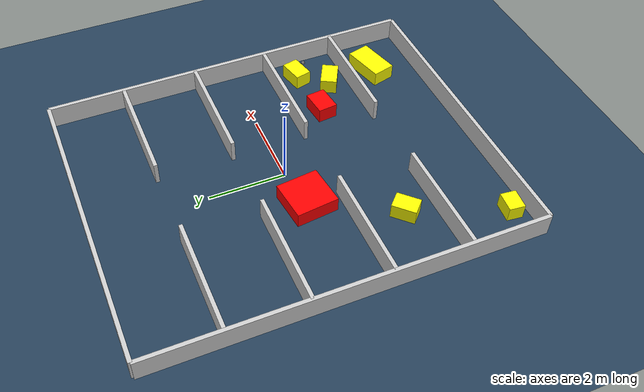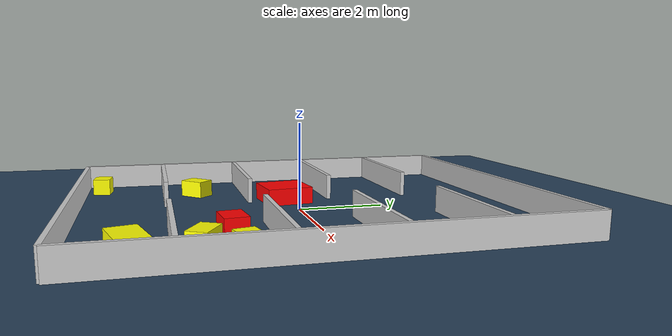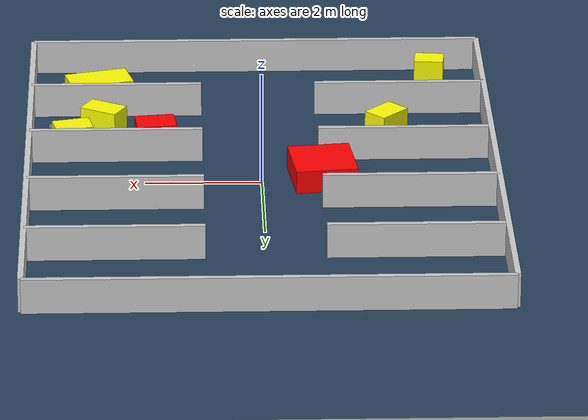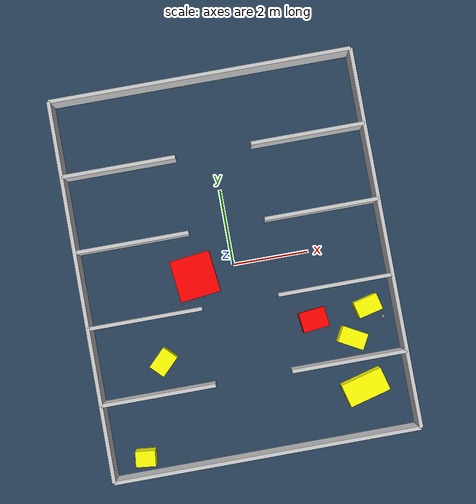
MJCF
<?xml version="1.0" ?>
<mujoco model="generated_environment">
  <option timestep="0.01" integrator="RK4" cone="elliptic"/>
  <default>
    <geom density="1"/>
  </default>
  <asset>
    <texture builtin="gradient" height="3072" rgb1="0.3 0.5 0.7" rgb2="0 0 0" type="skybox" width="512"/>
    <texture builtin="checker" height="300" mark="edge" markrgb="0.8 0.8 0.8" name="groundplane" rgb1="0.2 0.3 0.4" rgb2="0.1 0.2 0.3" type="2d" width="300"/>
    <material name="groundplane" reflectance="0.2" texrepeat="5 5" texture="groundplane" texuniform="true"/>
    <material name="robot" rgba="0.0 1.0 0.0 1"/>
  </asset>
  <worldbody>
    <light dir="0 0 -1" directional="true" pos="0 0 1.5"/>
    <geom condim="4" friction="1.0 0.005 0.001" material="groundplane" name="floor" size="0 0 0.05" type="plane"/>
    <body name="walls">
      <geom name="wall_1" condim="4" pos="-4.0 0.0 0.3" rgba="0.800000011920929 0.800000011920929 0.800000011920929 1.0" size="0.05 5.0 0.3" type="box"/>
      <geom name="wall_2" condim="4" pos="4.0 0.0 0.3" rgba="0.800000011920929 0.800000011920929 0.800000011920929 1.0" size="0.05 5.0 0.3" type="box"/>
      <geom name="wall_3" condim="4" pos="0.0 -5.0 0.3" rgba="0.800000011920929 0.800000011920929 0.800000011920929 1.0" size="4.0 0.05 0.3" type="box"/>
      <geom name="wall_4" condim="4" pos="0.0 5.0 0.3" rgba="0.800000011920929 0.800000011920929 0.800000011920929 1.0" size="4.0 0.05 0.3" type="box"/>
      <geom name="wall_5" condim="4" pos="-2.5 -3.0 0.3" rgba="0.800000011920929 0.800000011920929 0.800000011920929 1.0" size="1.5 0.05 0.3" type="box"/>
      <geom name="wall_6" condim="4" pos="2.5 -3.0 0.3" rgba="0.800000011920929 0.800000011920929 0.800000011920929 1.0" size="1.5 0.05 0.3" type="box"/>
      <geom name="wall_7" condim="4" pos="-2.5 -1.0 0.3" rgba="0.800000011920929 0.800000011920929 0.800000011920929 1.0" size="1.5 0.05 0.3" type="box"/>
      <geom name="wall_8" condim="4" pos="2.5 -1.0 0.3" rgba="0.800000011920929 0.800000011920929 0.800000011920929 1.0" size="1.5 0.05 0.3" type="box"/>
      <geom name="wall_9" condim="4" pos="-2.5 1.0 0.3" rgba="0.800000011920929 0.800000011920929 0.800000011920929 1.0" size="1.5 0.05 0.3" type="box"/>
      <geom name="wall_10" condim="4" pos="2.5 1.0 0.3" rgba="0.800000011920929 0.800000011920929 0.800000011920929 1.0" size="1.5 0.05 0.3" type="box"/>
      <geom name="wall_11" condim="4" pos="-2.5 3.0 0.3" rgba="0.800000011920929 0.800000011920929 0.800000011920929 1.0" size="1.5 0.05 0.3" type="box"/>
      <geom name="wall_12" condim="4" pos="2.5 3.0 0.3" rgba="0.800000011920929 0.800000011920929 0.800000011920929 1.0" size="1.5 0.05 0.3" type="box"/>
    </body>
    <body name="robot">
      <joint name="joint_x" type="slide" pos="0 0 0" axis="1 0 0"/>
      <joint name="joint_y" type="slide" pos="0 0 0" axis="0 1 0"/>
      <geom name="robot" type="sphere" pos="3.6344238057120224 -2.053805024047655 0.2" size="0.05" mass="5." friction="1.0 0.005 0.0001" condim="4"/>
      <site name="sensor_ball"/>
    </body>
    <body name="obstacle_1_movable">
      <geom name="obstacle_1_movable" condim="4" pos="3.258211596082469 -1.694177355892645 0.2" euler="0 0 283.2823480037589" friction="1.0 0.005 0.001" rgba="1 1 0 1" size="0.2213730057371971 0.32720623696729173 0.2" type="box" mass="0.1"/>
      <joint type="free"/>
    </body>
    <body name="obstacle_2_movable">
      <geom name="obstacle_2_movable" condim="4" pos="2.725362085521658 -2.4481296245026254 0.2" euler="0 0 241.26635607150348" friction="1.0 0.005 0.001" rgba="1 1 0 1" size="0.21915109107059366 0.3457971764130728 0.2" type="box" mass="0.1"/>
      <joint type="free"/>
    </body>
    <body name="obstacle_3_movable">
      <geom name="obstacle_3_movable" condim="4" pos="-3.132113781311764 -4.566387584099021 0.2" euler="0 0 173.8272603553505" friction="1.0 0.005 0.001" rgba="1 1 0 1" size="0.25972897590370003 0.20553486656701903 0.2" type="box" mass="0.1"/>
      <joint type="free"/>
    </body>
    <body name="obstacle_4_static">
      <geom name="obstacle_4_static" condim="4" pos="-1.0465165741294928 -0.14545061555610062 0.2" euler="0 0 6.4750739748150865" friction="1.0 0.005 0.001" rgba="1 0 0 1" size="0.5355124235134374 0.5526566959578052 0.2" type="box"/>
    </body>
    <body name="obstacle_5_movable">
      <geom name="obstacle_5_movable" condim="4" pos="2.8178437041752953 -3.7650416156489444 0.2" euler="0 0 104.75256452256457" friction="1.0 0.005 0.001" rgba="1 1 0 1" size="0.30992608803027766 0.5605445253763195 0.2" type="box" mass="0.1"/>
      <joint type="free"/>
    </body>
    <body name="obstacle_6_static">
      <geom name="obstacle_6_static" condim="4" pos="1.809986210628594 -1.801228806312523 0.2" euler="0 0 6.328765307732276" friction="1.0 0.005 0.001" rgba="1 0 0 1" size="0.34710119209833656 0.2590356869284675 0.2" type="box"/>
    </body>
    <body name="obstacle_7_movable">
      <geom name="obstacle_7_movable" condim="4" pos="-2.2421816187030412 -2.1936239812241065 0.2" euler="0 0 315.0400773804829" friction="1.0 0.005 0.001" rgba="1 1 0 1" size="0.22510231978632725 0.3118848293183887 0.2" type="box" mass="0.1"/>
      <joint type="free"/>
    </body>
  </worldbody>
  <actuator>
    <motor name="actuator_x" joint="joint_x" gear="1" ctrlrange="-1 1"/>
    <motor name="actuator_y" joint="joint_y" gear="1" ctrlrange="-1 1"/>
  </actuator>
</mujoco>
